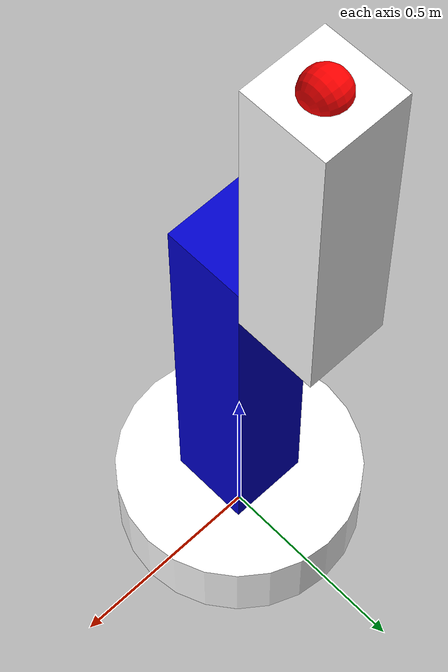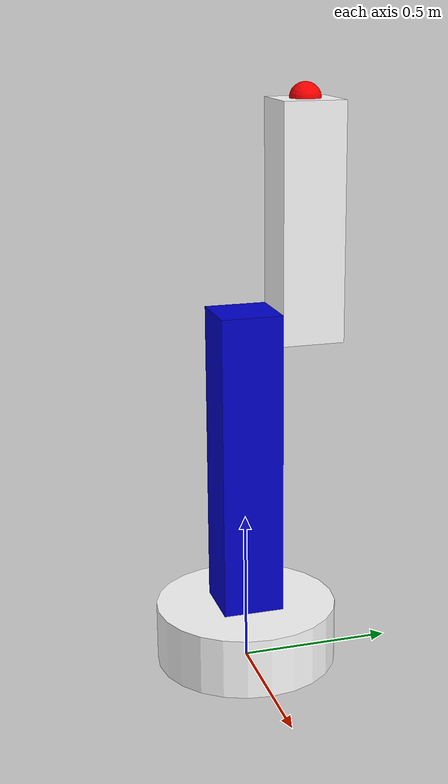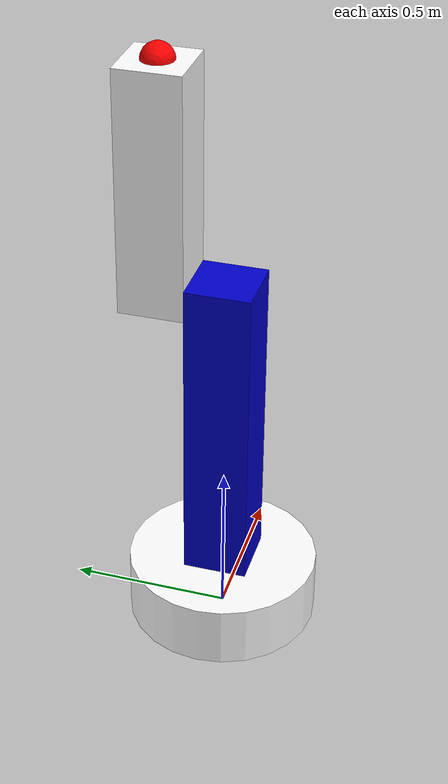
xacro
<?xml version="1.0"?>
<robot name="simple_arm" xmlns:xacro="http://www.ros.org/wiki/xacro">

  <!--Define constants-->
  <xacro:property name="link_type" value="cuboidal" />
  <xacro:property name="PI" value="3.14159"/>
  <xacro:property name="mass1" value="50" />
  <xacro:property name="mass2" value="10" />
  <xacro:property name="mass3" value="1" />
  <xacro:property name="radius1" value="0.3" /> <!--base_link radius-->
  <xacro:property name="radius2" value="0.1" /> <!--link_1 radius-->
  <xacro:property name="radius3" value="0.1" /> <!--link_2 radius-->
  <xacro:property name="length1" value="0.2" /> <!--link_1 length-->
  <xacro:property name="length2" value="1.0" /> <!--link_2 length-->
  <xacro:property name="length3" value="0.75" /> <!--link_3 length-->
  <xacro:property name="camera_size" value="0.05" />

  <!--Import gazebo elements-->
  <xacro:include filename="$(find simple_arm)/urdf/simple_arm.gazebo.xacro" />

  <!--Links-->
  <link name="world"/>

  <link name="base_link">
    <visual>
      <origin xyz="0 0 ${length1/2}" rpy="0 0 0"/>
      <geometry>
        <cylinder length="${length1}" radius="${radius1}"/>
      </geometry>
      <material name="white">
        <color rgba="1.0 1.0 1.0 1.0"/>
      </material>
    </visual>
    <collision>
      <origin xyz="0 0 ${length1/2}" rpy="0 0 0"/>
      <geometry>
        <cylinder length="${length1}" radius="${radius1}"/>
      </geometry>
    </collision>
    <inertial>
      <origin xyz="0 0 ${length1/2}" rpy="0 0 0"/>
      <mass value="${mass1}"/>
      <inertia
        ixx="${mass1 / 12.0 * (2*radius1*2*radius1 + length1*length1)}" ixy="0.0" ixz="0.0"
        iyy="${mass1 / 12.0 * (length1*length1 + 2*radius1*2*radius1)}" iyz="0.0"
        izz="${mass1 / 12.0 * (2*radius1*2*radius1 + 2*radius1*2*radius1)}"/>
    </inertial>
  </link>

  <!--Cuboidal link_1-->
  <xacro:if value="${link_type == 'cuboidal'}">
    <link name="link_1">
      <visual>
        <origin xyz="0 0 ${length2/2}" rpy="0 0 0"/>
        <geometry>
          <box size="${2*radius2} ${2*radius2} ${length2}"/>
        </geometry>
        <material name="blue">
          <color rgba="0.0 0.0 0.8 1.0"/>
        </material>
      </visual>
      <collision>
        <origin xyz="0 0 ${length2/2}" rpy="0 0 0"/>
        <geometry>
          <box size="${2*radius2} ${2*radius2} ${length2}"/>
        </geometry>
      </collision>
      <inertial>
        <origin xyz="0 0 ${length2/2}" rpy="0 0 0"/>
        <mass value="${mass2}"/>
        <inertia
          ixx="${mass2 / 12.0 * (2*radius2*2*radius2 + length2*length2)}" ixy="0.0" ixz="0.0"
          iyy="${mass2 / 12.0 * (length2*length2 + 2*radius2*2*radius2)}" iyz="0.0"
          izz="${mass2 / 12.0 * (2*radius2*2*radius2 + 2*radius2*2*radius2)}"/>
      </inertial>
    </link>
  </xacro:if>

  <!--Cylindrical link_1-->
  <xacro:if value="${link_type == 'cylindrical'}">
    <link name="link_1">
      <visual>
        <origin xyz="0 0 ${length2/2}" rpy="0 0 0"/>
        <geometry>
          <cylinder length="${length2}" radius="${radius2}"/>
        </geometry>
        <material name="blue">
          <color rgba="0.0 0.0 0.8 1.0"/>
        </material>
      </visual>
      <collision>
        <origin xyz="0 0 ${length2/2}" rpy="0 0 0"/>
        <geometry>
          <cylinder length="${length2}" radius="${radius2}"/>
        </geometry>
      </collision>
      <inertial>
        <origin xyz="0 0 ${length2/2}" rpy="0 0 0"/>
        <mass value="${mass2}"/>
        <inertia
          ixx="${mass2 / 12.0 * (2*radius2*2*radius2 + length2*length2)}" ixy="0.0" ixz="0.0"
          iyy="${mass2 / 12.0 * (length2*length2 + 2*radius2*2*radius2)}" iyz="0.0"
          izz="${mass2 / 12.0 * (2*radius2*2*radius2 + 2*radius2*2*radius2)}"/>
      </inertial>
    </link>
  </xacro:if>

  <!--Cuboidal link_2-->
  <xacro:if value="${link_type == 'cuboidal'}">
    <link name="link_2">
      <visual>
        <origin xyz="0 0 ${length3/2}" rpy="0 0 0"/>
        <geometry>
          <box size="${2*radius3} ${2*radius3} ${length3}"/>
        </geometry>
        <material name="white">
          <color rgba="1.0 1.0 1.0 1.0"/>
        </material>
      </visual>
      <collision>
        <origin xyz="0 0 ${length3/2}" rpy="0 0 0"/>
        <geometry>
          <box size="${2*radius3} ${2*radius3} ${length3}"/>
        </geometry>
      </collision>
      <inertial>
        <origin xyz="0 0 ${length3/2}" rpy="0 0 0"/>
        <mass value="${mass3}"/>
        <inertia
          ixx="${mass3 / 12.0 * (2*radius3*2*radius3 + length3*length3)}" ixy="0.0" ixz="0.0"
          iyy="${mass3 / 12.0 * (length3*length3 + 2*radius3*2*radius3)}" iyz="0.0"
          izz="${mass3 / 12.0 * (2*radius3*2*radius3 + 2*radius3*2*radius3)}"/>
      </inertial>
    </link>
  </xacro:if>

  <!--Cylindrical link_2-->
  <xacro:if value="${link_type == 'cylindrical'}">
    <link name="link_2">
      <visual>
        <origin xyz="0 0 ${length3/2}" rpy="0 0 0"/>
        <geometry>
          <cylinder length="${length3}" radius="${radius3}"/>
        </geometry>
        <material name="white">
          <color rgba="1.0 1.0 1.0 1.0"/>
        </material>
      </visual>
      <collision>
        <origin xyz="0 0 ${length3/2}" rpy="0 0 0"/>
        <geometry>
          <cylinder length="${length3}" radius="${radius3}"/>
        </geometry>
      </collision>
      <inertial>
        <origin xyz="0 0 ${length3/2}" rpy="0 0 0"/>
        <mass value="${mass3}"/>
        <inertia
          ixx="${mass3 / 12.0 * (2*radius3*2*radius3 + length3*length3)}" ixy="0.0" ixz="0.0"
          iyy="${mass3 / 12.0 * (length3*length3 + 2*radius3*2*radius3)}" iyz="0.0"
          izz="${mass3 / 12.0 * (2*radius3*2*radius3 + 2*radius3*2*radius3)}"/>
      </inertial>
    </link>
  </xacro:if>

  <!--camera_link-->
  <link name="camera_link">
    <collision>
      <origin xyz="0 0 0" rpy="0 0 0"/>
      <geometry>
        <!--mesh filename="package://simple_arm/meshes/camera.dae"/-->
        <sphere radius="${camera_size}"/>
      </geometry>
    </collision>
    <visual>
      <origin xyz="0 0 0" rpy="0 0 0"/>
      <geometry>
        <!--mesh filename="package://simple_arm/meshes/camera.dae"/-->
        <sphere radius="${camera_size}"/>
      </geometry>
      <material name="red">
        <color rgba="1.0 0 0 1.0"/>
      </material>
    </visual>
    <inertial>
      <mass value="1e-5" />
      <origin xyz="0 0 0" rpy="0 0 0"/>
      <inertia ixx="1e-6" ixy="0" ixz="0" iyy="1e-6" iyz="0" izz="1e-6" />
    </inertial>
  </link>

  <!--Joints-->
  <joint name="fixed_base_joint" type="fixed">
    <parent link="world"/>
    <child link="base_link"/>
  </joint>

  <joint name="joint_1" type="continuous">
    <parent link="base_link"/>
    <child link="link_1"/>
    <axis xyz="0 0 1"/>
    <origin xyz="0 0 ${length1}" rpy="0 0 0"/>
    <limit effort="30" velocity="1.0"/>
    <safety_controller k_velocity="10" k_position="15" soft_lower_limit="-2.0" soft_upper_limit="0.5" />
  </joint>

  <joint name="joint_2" type="continuous">
    <parent link="link_1"/>
    <child link="link_2"/>
    <axis xyz="0 1 0"/>
    <origin xyz="0 ${2*radius2} ${length2-radius2}" rpy="0 0 0"/>
    <limit effort="30" velocity="1.0"/>
    <safety_controller k_velocity="10" k_position="15" soft_lower_limit="-2.0" soft_upper_limit="0.5" />
  </joint>

  <joint name="camera_joint" type="fixed">
    <axis xyz="0 0 1" />
    <origin xyz="0 0 ${length3}" rpy="0 -${PI/2} 0"/>
    <parent link="link_2"/>
    <child link="camera_link"/>
  </joint>

  <!--Transmission and actuators-->
  <transmission name="tran1">
    <type>transmission_interface/SimpleTransmission</type>
    <joint name="joint_1">
      <hardwareInterface>EffortJointInterface</hardwareInterface>
      <hardwareInterface>hardware_interface/EffortJointInterface</hardwareInterface>
    </joint>
    <actuator name="motor1">
      <hardwareInterface>EffortJointInterface</hardwareInterface>
      <hardwareInterface>hardware_interface/EffortJointInterface</hardwareInterface>
      <mechanicalReduction>1</mechanicalReduction>
    </actuator>
  </transmission>

  <transmission name="tran2">
    <type>transmission_interface/SimpleTransmission</type>
    <joint name="joint_2">
      <hardwareInterface>EffortJointInterface</hardwareInterface>
      <hardwareInterface>hardware_interface/EffortJointInterface</hardwareInterface>
    </joint>
    <actuator name="motor2">
      <hardwareInterface>EffortJointInterface</hardwareInterface>
      <hardwareInterface>hardware_interface/EffortJointInterface</hardwareInterface>
      <mechanicalReduction>1</mechanicalReduction>
    </actuator>
  </transmission>
</robot>
